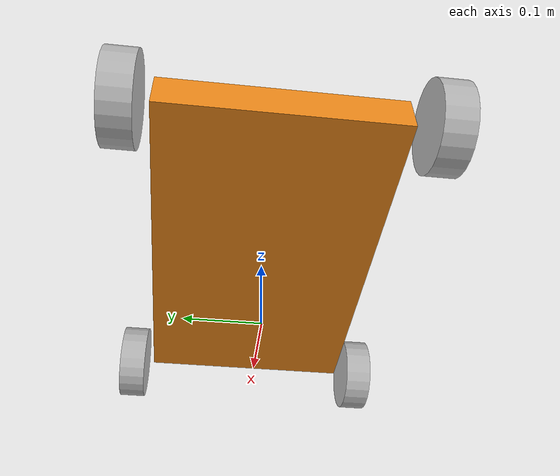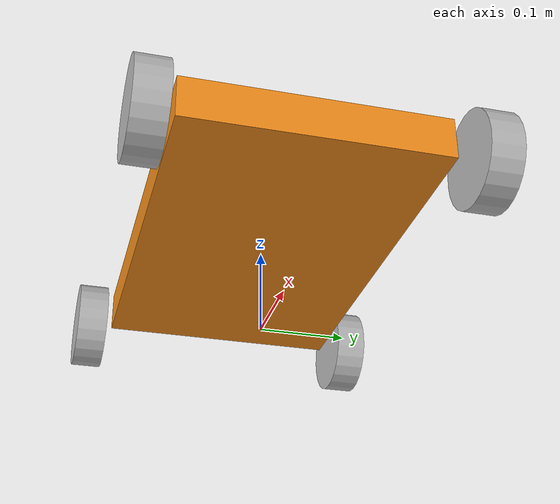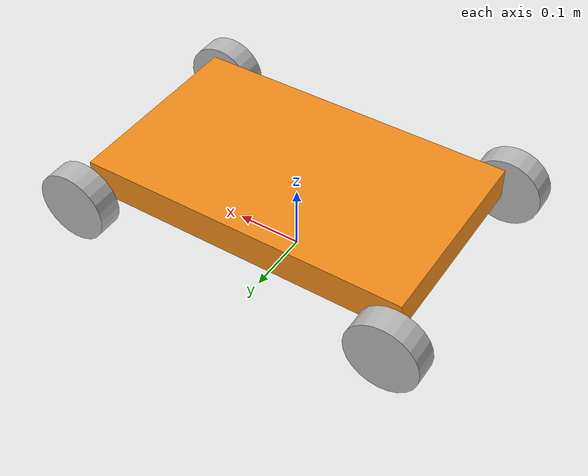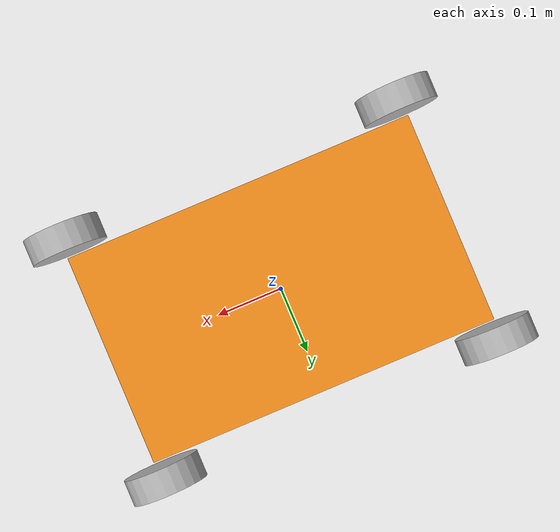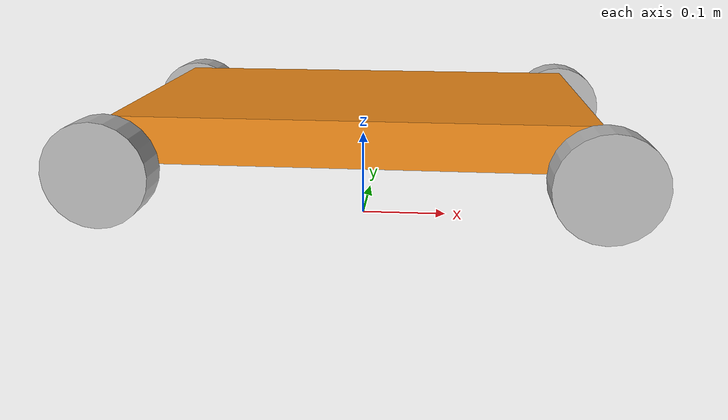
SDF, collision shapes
<?xml version="1.0" ?>
<sdf version="1.5">
  <model name="qbot">
    <pose>0 0 0.1 0 0 0</pose>
    <static>false</static>
    <link name="chassis">
      <pose>0 0 0.025 0 0 0</pose>
      <inertial>
        <mass>5.0</mass>
        <inertia>
          <ixx>0.147116667</ixx>
          <ixy>0.0</ixy>
          <ixz>0.0</ixz>
          <iyy>0.334951167</iyy>
          <iyz>0.0</iyz>
          <izz>0.3978345</izz>
        </inertia>
      </inertial>
      <collision name="collision">
        <geometry>
          <box>
            <size>0.5 0.3 0.05</size>
          </box>
        </geometry>
      </collision>
      <visual name="visual">
        <geometry>
          <box>
            <size>0.5 0.3 0.05</size>
          </box>
        </geometry>
        <material>
	  <script>
	    <uri>file://media/materials/scripts/gazebo.material</uri>
	    <name>Gazebo/Orange</name>
	  </script>
</material>
      </visual>
    </link>
    <link name="right_front_wheel">
      <pose>0.25 -0.18 0 1.5707 0 0</pose>

      <inertial>
        <mass>0.2</mass>
        <inertia>
          <ixx>0.005240625</ixx>
          <iyy>0.005240625</iyy>
          <izz>0.009075</izz>
          <ixy>0</ixy>
          <ixz>0</ixz>
          <iyz>0</iyz>
        </inertia>
      </inertial>

      <collision name="collision">
        <geometry>
          <cylinder>
            <radius>0.055</radius>
            <length>0.0375</length>
          </cylinder>
        </geometry>
        <surface>
          <friction>
            <ode>
              <mu>1</mu>
              <mu2>1</mu2>
              <slip1>0.5</slip1>
              <slip2>0</slip2>
            </ode>
          </friction>
        </surface>
      </collision>
      <visual name="visual">
        <geometry>
          <mesh>
            <uri>model://qbot/meshes/wheel.dae</uri>
	    <scale>0.5 0.5 0.5</scale>
          </mesh>
        </geometry>
      </visual>
    </link>
    <link name="left_front_wheel">
      <pose>0.25 0.18 0 1.5707 0 0</pose>

      <inertial>
        <mass>0.2</mass>
        <inertia>
          <ixx>0.005240625</ixx>
          <iyy>0.005240625</iyy>
          <izz>0.009075</izz>
          <ixy>0</ixy>
          <ixz>0</ixz>
          <iyz>0</iyz>
        </inertia>
      </inertial>

      <collision name="collision">
        <geometry>
          <cylinder>
            <radius>0.055</radius>
            <length>0.0375</length>
          </cylinder>
        </geometry>
        <surface>
          <friction>
            <ode>
              <mu>1</mu>
              <mu2>1</mu2>
              <slip1>0.5</slip1>
              <slip2>0</slip2>
            </ode>
          </friction>
        </surface>
      </collision>
      <visual name="visual">
        <geometry>
          <mesh>
            <uri>model://qbot/meshes/wheel.dae</uri>
	    <scale>0.5 0.5 0.5</scale>
          </mesh>
        </geometry>
      </visual>
    </link>
    <link name="right_rear_wheel">
      <pose>-0.25 -0.18 0 1.5707 0 0</pose>

      <inertial>
        <mass>0.2</mass>
        <inertia>
          <ixx>0.005240625</ixx>
          <iyy>0.005240625</iyy>
          <izz>0.009075</izz>
          <ixy>0</ixy>
          <ixz>0</ixz>
          <iyz>0</iyz>
        </inertia>
      </inertial>

      <collision name="collision">
        <geometry>
          <cylinder>
            <radius>0.055</radius>
            <length>0.0375</length>
          </cylinder>
        </geometry>
        <surface>
          <friction>
            <ode>
              <mu>1</mu>
              <mu2>1</mu2>
              <slip1>0.5</slip1>
              <slip2>0</slip2>
            </ode>
          </friction>
        </surface>
      </collision>
      <visual name="visual">
        <geometry>
          <mesh>
            <uri>model://qbot/meshes/wheel.dae</uri>
	    <scale>0.5 0.5 0.5</scale>
          </mesh>
        </geometry>
      </visual>
    </link>
    <link name="left_rear_wheel">
      <pose>-0.25 0.18 0 1.5707 0 0</pose>

      <inertial>
        <mass>0.2</mass>
        <inertia>
          <ixx>0.005240625</ixx>
          <iyy>0.005240625</iyy>
          <izz>0.009075</izz>
          <ixy>0</ixy>
          <ixz>0</ixz>
          <iyz>0</iyz>
        </inertia>
      </inertial>

      <collision name="collision">
        <geometry>
          <cylinder>
            <radius>0.055</radius>
            <length>0.0375</length>
          </cylinder>
        </geometry>
        <surface>
          <friction>
            <ode>
              <mu>1</mu>
              <mu2>1</mu2>
              <slip1>0.5</slip1>
              <slip2>0</slip2>
            </ode>
          </friction>
        </surface>
      </collision>
      <visual name="visual">
        <geometry>
          <mesh>
            <uri>model://qbot/meshes/wheel.dae</uri>
	    <scale>0.5 0.5 0.5</scale>
          </mesh>
        </geometry>
      </visual>
    </link>
    <joint type="revolute" name="right_front">
      <pose>0 0 0 0 0 0</pose>
      <child>right_front_wheel</child>
      <parent>chassis</parent>
      <axis>
        <xyz>0 1 0</xyz>
        <use_parent_model_frame>true</use_parent_model_frame>
      </axis>
    </joint>
    <joint type="revolute" name="right_rear">
      <pose>0 0 0 0 0 0</pose>
      <child>right_rear_wheel</child>
      <parent>chassis</parent>
      <axis>
        <xyz>0 1 0</xyz>
        <use_parent_model_frame>true</use_parent_model_frame>
      </axis>
    </joint>
    <joint type="revolute" name="left_front">
      <pose>0 0 0 0 0 0</pose>
      <child>left_front_wheel</child>
      <parent>chassis</parent>
      <axis>
        <xyz>0 1 0</xyz>
        <use_parent_model_frame>true</use_parent_model_frame>
      </axis>
    </joint>
    <joint type="revolute" name="left_rear">
      <pose>0 0 0 0 0 0</pose>
      <child>left_rear_wheel</child>
      <parent>chassis</parent>
      <axis>
        <xyz>0 1 0</xyz>
        <use_parent_model_frame>true</use_parent_model_frame>
      </axis>
    </joint>

    <plugin filename="libgazebo_ros_skid_steer_drive.so" name="skid_steer_drive_controller">
      <updateRate>100.0</updateRate>
      <robotNamespace>qbot</robotNamespace>
      <leftFrontJoint>left_front</leftFrontJoint>
      <rightFrontJoint>right_front</rightFrontJoint>
      <leftRearJoint>left_rear</leftRearJoint>
      <rightRearJoint>right_rear</rightRearJoint>
      <wheelSeparation>0.36</wheelSeparation>
      <wheelDiameter>0.11</wheelDiameter>
      <robotBaseFrame>base_link</robotBaseFrame>
      <MaxForce>5.0</MaxForce>
      <torque>200</torque>
      <commandTopic>cmd_vel</commandTopic>
      <odometryTopic>odom</odometryTopic>
      <odometryFrame>odom</odometryFrame>
      <broadcastTF>1</broadcastTF>
    </plugin>

  </model>
</sdf>
